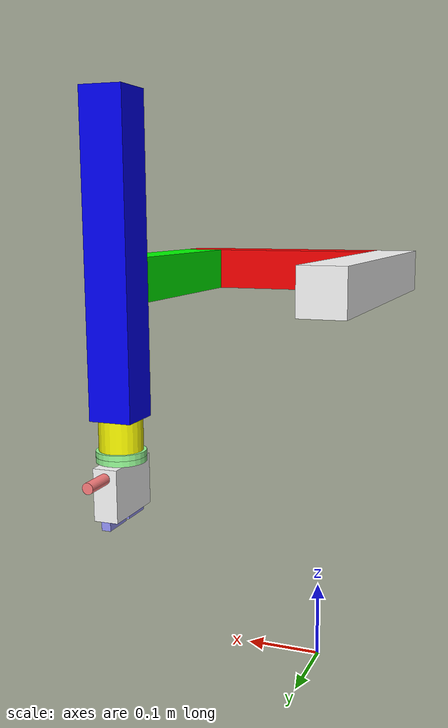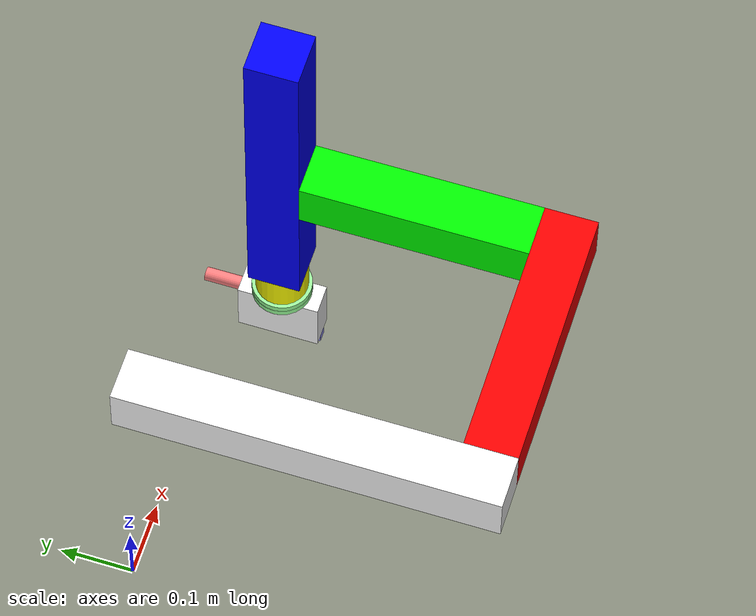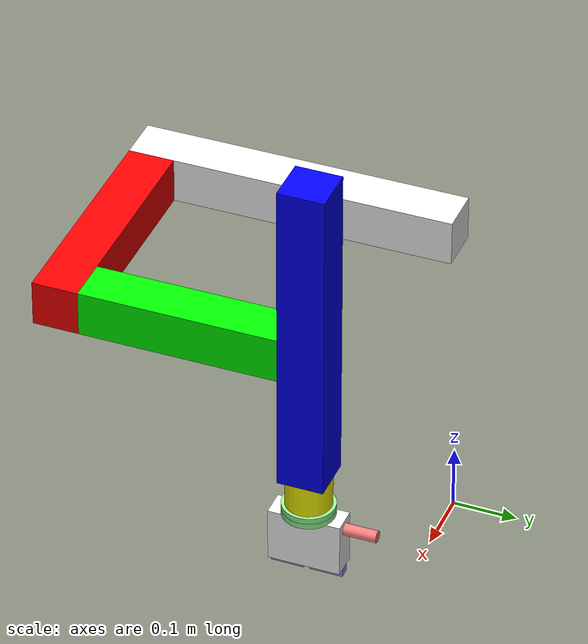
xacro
<?xml version="1.0"?>
<robot name="cartesian_robot_block_printer"
    xmlns:xacro="http://www.ros.org/wiki/xacro">
    <xacro:property name="width" value="0.07" />
    <xacro:property name="base_height" value="1.0" />
    <xacro:property name="height1" value="0.5" />
    <xacro:property name="height2" value="0.35" />
    <xacro:property name="height3" value="0.3" />
    <xacro:property name="height4" value="0.5" />
    <xacro:property name="height5" value="0.05" />
    <xacro:property name="prismatic_velocity" value="1.0"/>
    <xacro:property name="prismatic_effort" value="100.0"/>
    <xacro:property name="revolute_velocity" value="3.0"/>
    <xacro:property name="revolute_effort" value="10.0"/>
    <xacro:property name="mass" value="0.1"/>

    <xacro:include filename="$(find urdf_macro)/urdf/material.xacro" />
    <xacro:include filename="$(find urdf_macro)/urdf/primitive_shape.xacro" />

    <link name="base_link"/>
    <xacro:rectangle_link name="link1" x="${width}" y="${width}" z="${height1}" mass="${mass}" rgba="1 1 1 1" />
    <xacro:rectangle_link name="link2" x="${width}" y="${width}" z="${height2}" mass="${mass}" rgba="1 0 0 1" />
    <xacro:rectangle_link name="link3" x="${width}" y="${width}" z="${height3}" mass="${mass}" rgba="0 1 0 1" />
    <xacro:rectangle_link name="link4" x="${width}" y="${width}" z="${height4}" mass="${mass}" rgba="0 0 1 1" />
    <xacro:cylinder_link name="link5" radius="${width/2}" length="${height5}" mass="${mass}" rgba="1 1 0 1" />
    <link name="tool0" />

    <joint name="base_joint" type="fixed">
        <parent link="base_link"/>
        <child link="link1"/>
        <origin xyz="0 0 ${base_height / 2}" rpy="0 ${pi / 2} ${-pi/2}"/>
        <axes xyz="1 0 0" />
    </joint>

    <joint name="joint1" type="prismatic">
        <parent link="link1"/>
        <child link="link2"/>
        <origin xyz="0 ${width / 2} ${height1 - width / 2}" rpy="-${pi / 2} ${pi / 2} 0"/>
        <limit lower="0" upper="${height1 -width}" effort="${prismatic_effort}" velocity="${prismatic_velocity}"/>
    </joint>

    <joint name="joint2" type="prismatic">
        <parent link="link2"/>
        <child link="link3"/>
        <origin xyz="${width / 2} 0 ${height2 - width / 2}" rpy="0 ${pi / 2} 0"/>
        <limit lower="0" upper="${height2 - width}" effort="${prismatic_effort}" velocity="${prismatic_velocity}"/>
    </joint>

    <joint name="joint3" type="prismatic">
        <parent link="link3"/>
        <child link="link4"/>
        <origin xyz="0 ${height4 / 2 + width / 2} ${height3 + width / 2}" rpy="${pi / 2} 0 0"/>
        <axis xyz="0 0 1"/>
        <limit lower="${-1 * height4 / 2}" upper="${height4 / 2}" effort="${prismatic_effort}" velocity="${prismatic_velocity}"/>
    </joint>

    <joint name="joint4" type="revolute">
        <parent link="link4"/>
        <child link="link5"/>
        <origin xyz="0 0 ${height4}" rpy="0 0 0"/>
        <axis xyz="0 0 1"/>
        <limit lower="${-pi}" upper="${pi}" effort="${revolute_effort}" velocity="${revolute_velocity}"/>
    </joint>

    <joint name="tool_joint" type="fixed">
        <origin xyz="0.0 0.0 ${height5}" rpy="0.0 0.0 0.0"/>
        <parent link="link5"/>
        <child link="tool0"/>
    </joint>

    <!--merge gripper-->
    <xacro:include filename="$(find gripper_description)/urdf/simple_esg1_fs_2840_macro.xacro">
        <arg name="robot_tool_link" value="tool0"/>
        <arg name="tool_roll" value="0"/>
        <arg name="tool_pitch" value="3.141592653589793238"/>
        <arg name="tool_yaw" value="0"/>
    </xacro:include>
</robot>

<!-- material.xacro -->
<robot xmlns:xacro="http://www.ros.org/wiki/xacro">
    <xacro:macro name="material_color" params="name rgba">
        <material name="material_color_${name}">
            <color rgba="${rgba}"/>
        </material>
    </xacro:macro>
</robot>

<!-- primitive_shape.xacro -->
<robot xmlns:xacro="http://www.ros.org/wiki/xacro">

    <xacro:include filename="$(find urdf_macro)/urdf/material.xacro" />

    <xacro:macro name="rectangle_link" params="name x y z mass rgba">
        <link name="${name}">
            <collision>
                <origin xyz="0 0 ${z/2}" rpy="0 0 0"/>
                <geometry>
                    <box size="${x} ${y} ${z}"/>
                </geometry>
            </collision>
            <visual>
                <origin xyz="0 0 ${z/2}" rpy="0 0 0"/>
                <geometry>
                    <box size="${x} ${y} ${z}"/>
                </geometry>
                <xacro:material_color name="${name}" rgba="${rgba}" />
            </visual>
            <inertial>
                <origin xyz="0 0 ${z/2}"/>
                <mass value="${mass}"/>
                <inertia ixx="${mass*(y*y+z*z)/3}" ixy="0" ixz="0" iyy="${mass*(z*z+x*x)/3}" iyz="0" izz="${mass*(x*x+y*y)/3}"/>
            </inertial>
        </link>
    </xacro:macro>

    <xacro:macro name="cylinder_link" params="name radius length mass rgba">
        <link name="${name}">
            <collision>
                <origin xyz="0 0 ${length / 2}" rpy="0 0 0" />
                <geometry>
                    <cylinder radius="${radius}" length="${length}"/>
                </geometry>
            </collision>
            <visual>
                <origin xyz="0 0 ${length / 2}" rpy="0 0 0" />
                <geometry>
                    <cylinder radius="${radius}" length="${length}"/>
                </geometry>
                <xacro:material_color name="${name}" rgba="${rgba}" />
            </visual>
            <inertial>
                <origin xyz="0 0 ${length/2}"/>
                <mass value="${mass}"/>
                <inertia ixx="${mass*(radius*radius/4*length*length/12)}" ixy="0" ixz="0" iyy="${mass*(radius*radius/4*length*length/12)}" iyz="0" izz="${mass*radius*radius/2}"/>
            </inertial>
        </link>
    </xacro:macro>
</robot>

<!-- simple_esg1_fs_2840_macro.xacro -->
<!--TAIYO ESG1_FS_2840 Gripper with Fixed Claws-->
<robot xmlns:xacro="http://www.ros.org/wiki/xacro">
    <!--xacro arg-->
    <xacro:arg name="robot_tool_link" default="tool0"/>
    <xacro:arg name="tool_roll" default="0"/>
    <xacro:arg name="tool_pitch" default="3.141592653589793238"/>
    <xacro:arg name="tool_yaw" default="0"/>
    <!--xacro property-->
    <xacro:property name="finger_gap" value="0.0085"/>
    <xacro:property name="interface_radius" value="0.04" />
    <xacro:property name="interface_length" value="0.009" />
    <xacro:property name="interface_mass" value="0.1" />
    <xacro:property name="interface_rgba" value="0.6 1 0.6 1"/>
    <xacro:property name="gripper_body_x" value="0.11" />
    <xacro:property name="gripper_body_y" value="0.04" />
    <xacro:property name="gripper_body_z" value="0.084" />
    <xacro:property name="gripper_body_mass" value="0.8" />
    <xacro:property name="gripper_body_rgba" value="1 1 1 1"/>
    <xacro:property name="gripper_side_radius" value="0.009" />
    <xacro:property name="gripper_side_length" value="0.05" />
    <xacro:property name="gripper_side_mass" value="0.01" />
    <xacro:property name="gripper_side_rgba" value="1 0.5 0.5 1" />
    <xacro:property name="finger_body_x" value="${(gripper_body_x-finger_gap)/2}" />
    <xacro:property name="finger_body_y" value="0.015" />
    <xacro:property name="finger_body_z" value="0.0136" />
    <xacro:property name="finger_mass" value="0.005" />
    <xacro:property name="finger_rgba" value="0.6 0.6 1 1"/>
    <xacro:property name="tool_roll" value="$(arg tool_roll)"/>
    <xacro:property name="tool_pitch" value="$(arg tool_pitch)"/>
    <xacro:property name="tool_yaw" value="$(arg tool_yaw)"/>
    <!--xacro macro-->
    <xacro:include filename="$(find urdf_macro)/urdf/material.xacro" />
    <xacro:include filename="$(find urdf_macro)/urdf/primitive_shape.xacro" />
    <!--link-->
    <xacro:cylinder_link name="robot_gripper_interface1" radius="${interface_radius}" length="${interface_length}" mass="${interface_mass}" rgba="${interface_rgba}"/>
    <xacro:cylinder_link name="robot_gripper_interface2" radius="${interface_radius}" length="${interface_length}" mass="${interface_mass}" rgba="${interface_rgba}"/>
    <xacro:rectangle_link name="gripper_body" x="${gripper_body_x}" y="${gripper_body_y}" z="${gripper_body_z}" mass="${gripper_body_mass}" rgba="${gripper_body_rgba}"/>
    <xacro:cylinder_link name="gripper_side" radius="${gripper_side_radius}" length="${gripper_side_length}" mass="${gripper_side_mass}" rgba="${gripper_side_rgba}"/>
    <xacro:rectangle_link name="right_claw" x="${finger_body_x}" y="${finger_body_y}" z="${finger_body_z}" mass="${finger_mass}" rgba="${finger_rgba}"/>
    <xacro:rectangle_link name="left_claw" x="${finger_body_x}" y="${finger_body_y}" z="${finger_body_z}" mass="${finger_mass}" rgba="${finger_rgba}"/>
    <link name="peak_tool" />
    <!--joint of robot and gripper interface-->
    <joint name="robot_to_gripper" type="fixed">
        <parent link="$(arg robot_tool_link)" />
        <child link="robot_gripper_interface1" />
        <origin xyz="0 0 0" rpy="0 0 ${pi / 2}" />
    </joint>
    <!--joint of gripper interface and body-->
    <joint name="robot_to_gripper_interface_2" type="fixed">
        <parent link="robot_gripper_interface1" />
        <child link="robot_gripper_interface2" />
        <origin rpy="0 0 0" xyz="0 0 ${interface_length / 2 * 2}" />
    </joint>
    <joint name="interface_to_gripper_body" type="fixed">
        <parent link="robot_gripper_interface2"/>
        <child link="gripper_body"/>
        <origin xyz="0.0 0.0 ${interface_length / 2 * 2}" rpy="0 0 0"/>
    </joint>
    <!--joint of gripper body and its side-->
    <joint name="gripper_to_side" type="fixed">
        <parent link="gripper_body" />
        <child link="gripper_side" />
        <origin rpy="${pi} ${-pi/2} 0" xyz="${gripper_body_x/2} 0 ${0.006+gripper_side_radius}" />
    </joint>
    <!--joint of gripper and claw-->
    <joint name="right_claw_joint" type="fixed">
        <parent link="gripper_body"/>
        <child link="right_claw"/>
        <origin xyz="${gripper_body_x/2-finger_body_x/2} 0 ${gripper_body_z}" rpy="0 0 0"/>
    </joint>
    <joint name="left_claw_joint" type="fixed">
        <parent link="gripper_body"/>
        <child link="left_claw"/>
        <origin xyz="${-gripper_body_x/2+finger_body_x/2} 0 ${gripper_body_z}" rpy="0 0 0"/>
    </joint>
    <!--joint of gripper and peak tool-->
    <joint name="peak_tool" type="fixed">
        <origin xyz="0 0 ${gripper_body_z + finger_body_z}" rpy="${tool_roll} ${tool_pitch} ${tool_yaw}"/>
        <parent link="gripper_body"/>
        <child link="peak_tool"/>
    </joint>
</robot>
